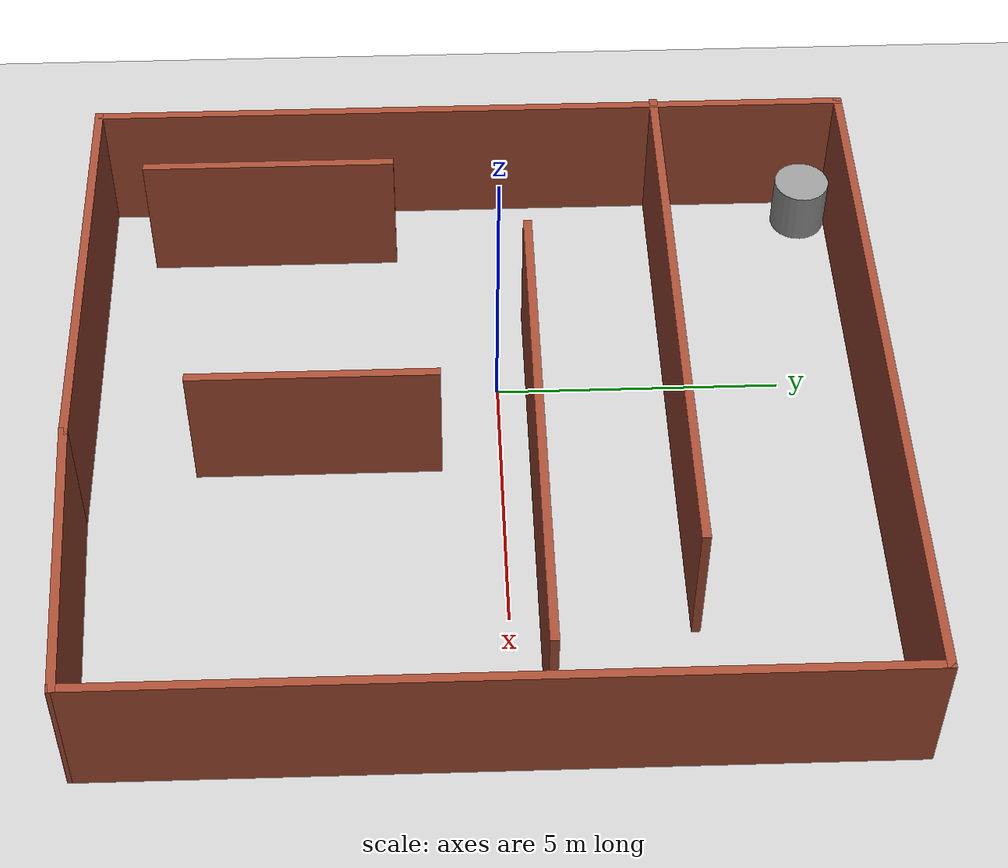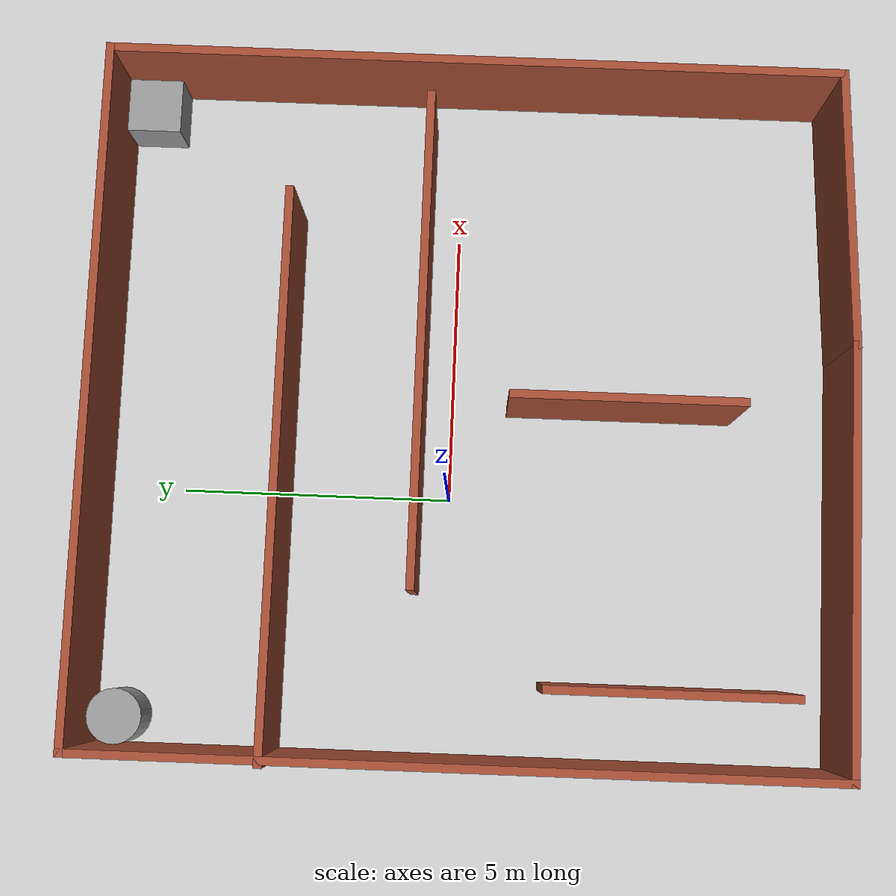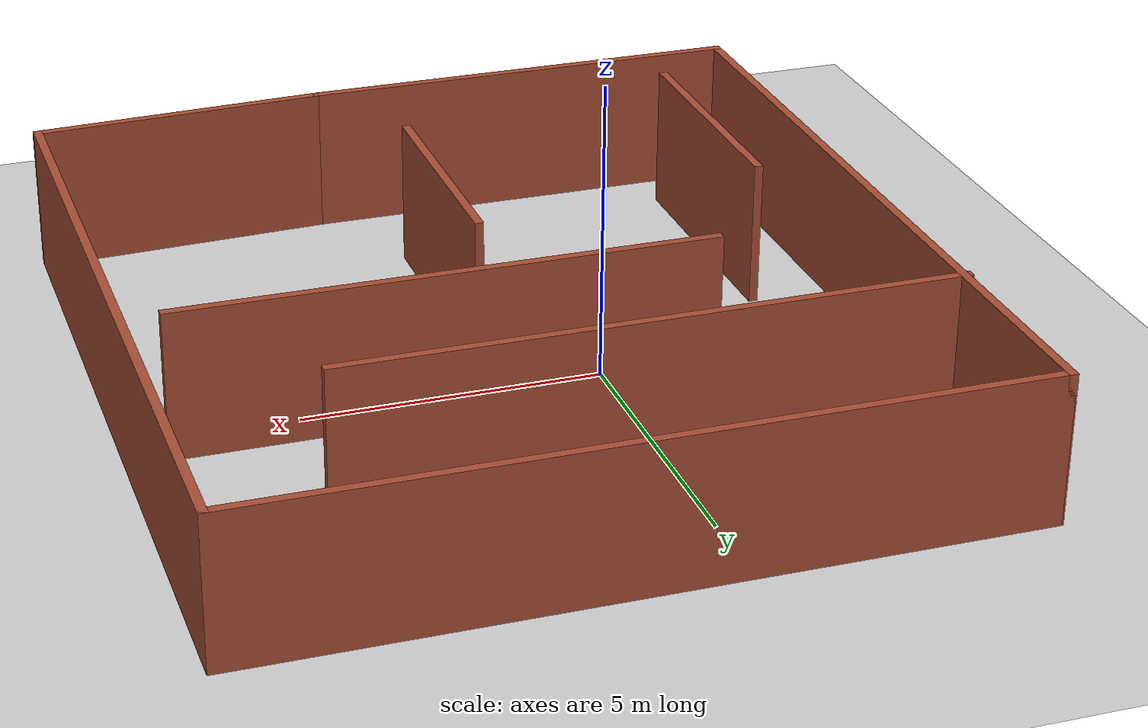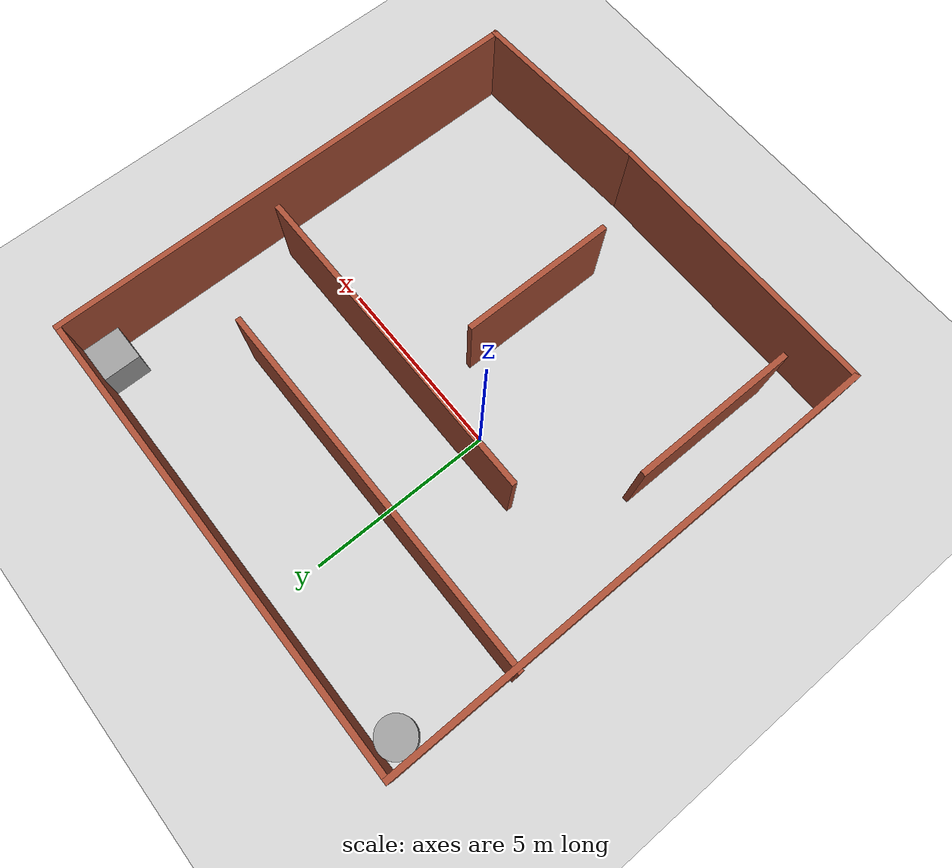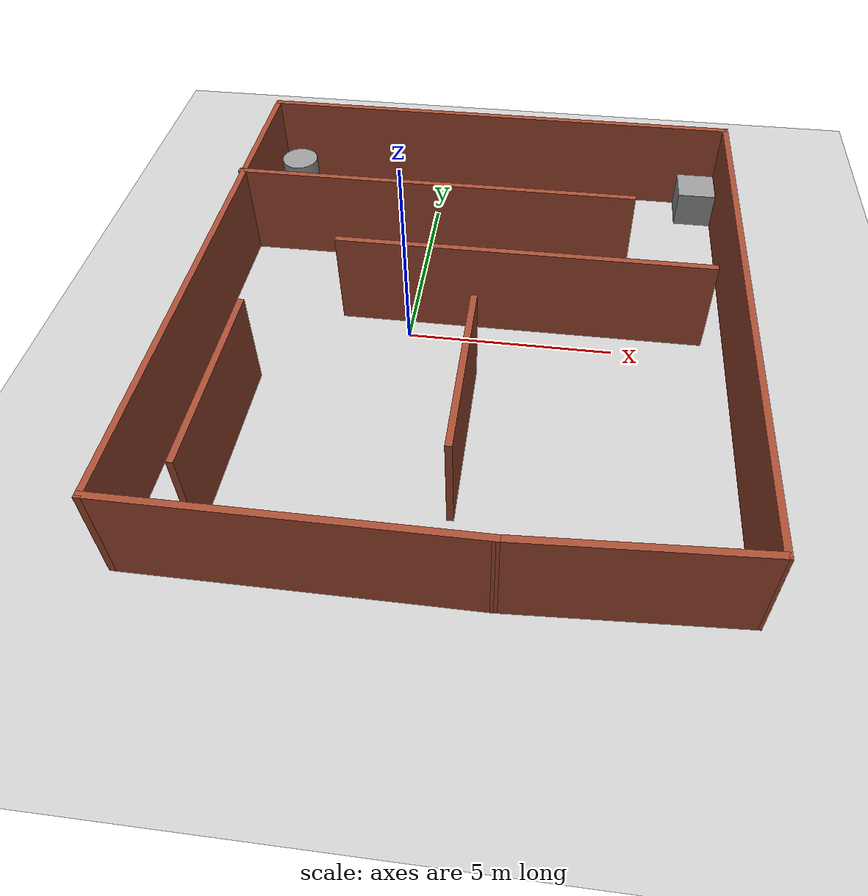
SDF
<sdf version="1.7">
 <world name="default">
  <light name="sun" type="directional">
   <pose>0 0 10 0 -0 0</pose>
   <diffuse>0.8 0.8 0.8 1</diffuse>
   <specular>0.2 0.2 0.2 1</specular>
   <attenuation>
    <range>1000</range>
    <constant>0.9</constant>
    <linear>0.01</linear>
    <quadratic>0.001</quadratic>
   </attenuation>
   <direction>-0.5 0.1 -0.9</direction>
   <spot><inner_angle>0</inner_angle><outer_angle>0</outer_angle><falloff>0</falloff></spot>
  </light>
  <model name="ground_plane">
   <static>1</static>
   <link name="link">
    <collision name="collision">
     <geometry><plane><normal>0 0 1</normal><size>100 100</size></plane></geometry>
     <surface><friction><ode><mu>100</mu><mu2>50</mu2></ode></friction></surface>
    </collision>
    <visual name="visual">
     <cast_shadows>0</cast_shadows>
     <geometry><plane><normal>0 0 1</normal><size>100 100</size></plane></geometry>
     <material>
      <script><uri>file://media/materials/scripts/gazebo.material</uri><name>Gazebo/Grey</name></script>
     </material>
    </visual>
   </link>
  </model>
  <gravity>0 0 -9.8</gravity>
  <magnetic_field>6e-06 2.3e-05 -4.2e-05</magnetic_field>
  <atmosphere type="adiabatic"/>
  <physics type="ode">
   <max_step_size>0.001</max_step_size>
   <real_time_factor>1</real_time_factor>
   <real_time_update_rate>1000</real_time_update_rate>
  </physics>
  <scene><ambient>0.4 0.4 0.4 1</ambient><background>0.7 0.7 0.7 1</background><shadows>1</shadows></scene>
  <spherical_coordinates>
   <surface_model>EARTH_WGS84</surface_model>
   <latitude_deg>0</latitude_deg>
   <longitude_deg>0</longitude_deg>
   <elevation>0</elevation>
   <heading_deg>0</heading_deg>
  </spherical_coordinates>
  <model name="maze_map.world">
   <pose>1.49856 -0.353787 0 0 -0 0</pose>
   <link name="Wall_0">
    <collision name="Wall_0_Collision">
     <geometry><box><size>7.75 0.15 2.5</size></box></geometry>
     <pose>0 0 1.25 0 -0 0</pose>
    </collision>
    <visual name="Wall_0_Visual">
     <pose>0 0 1.25 0 -0 0</pose>
     <geometry><box><size>7.75 0.15 2.5</size></box></geometry>
     <material>
      <script><uri>file://media/materials/scripts/gazebo.material</uri><name>Gazebo/Bricks</name></script>
      <ambient>1 1 1 1</ambient>
     </material>
     <meta><layer>0</layer></meta>
    </visual>
    <pose>-2.47349 -6.79817 0 0 -0 3.14159</pose>
   </link>
   <link name="Wall_11">
    <collision name="Wall_11_Collision">
     <geometry><box><size>4.25 0.15 2.5</size></box></geometry>
     <pose>0 0 1.25 0 -0 0</pose>
    </collision>
    <visual name="Wall_11_Visual">
     <pose>0 0 1.25 0 -0 0</pose>
     <geometry><box><size>4.25 0.15 2.5</size></box></geometry>
     <material>
      <script><uri>file://media/materials/scripts/gazebo.material</uri><name>Gazebo/Bricks</name></script>
      <ambient>1 1 1 1</ambient>
     </material>
     <meta><layer>0</layer></meta>
    </visual>
    <pose>0.229714 -2.79319 0 0 -0 -1.5708</pose>
   </link>
   <link name="Wall_13">
    <collision name="Wall_13_Collision">
     <geometry><box><size>4.5 0.15 2.5</size></box></geometry>
     <pose>0 0 1.25 0 -0 0</pose>
    </collision>
    <visual name="Wall_13_Visual">
     <pose>0 0 1.25 0 -0 0</pose>
     <geometry><box><size>4.5 0.15 2.5</size></box></geometry>
     <material>
      <script><uri>file://media/materials/scripts/gazebo.material</uri><name>Gazebo/Bricks</name></script>
      <ambient>1 1 1 1</ambient>
     </material>
     <meta><layer>0</layer></meta>
    </visual>
    <pose>-4.88792 -3.66257 0 0 -0 -1.5708</pose>
   </link>
   <link name="Wall_2">
    <collision name="Wall_2_Collision">
     <geometry><box><size>13.75 0.15 2.5</size></box></geometry>
     <pose>0 0 1.25 0 -0 0</pose>
    </collision>
    <visual name="Wall_2_Visual">
     <pose>0 0 1.25 0 -0 0</pose>
     <geometry><box><size>13.75 0.15 2.5</size></box></geometry>
     <material>
      <script><uri>file://media/materials/scripts/gazebo.material</uri><name>Gazebo/Bricks</name></script>
      <ambient>1 1 1 1</ambient>
     </material>
     <meta><layer>0</layer></meta>
    </visual>
    <pose>-6.27349 0.001826 0 0 -0 1.5708</pose>
   </link>
   <link name="Wall_3">
    <collision name="Wall_3_Collision">
     <geometry><box><size>12.75 0.15 2.5</size></box></geometry>
     <pose>0 0 1.25 0 -0 0</pose>
    </collision>
    <visual name="Wall_3_Visual">
     <pose>0 0 1.25 0 -0 0</pose>
     <geometry><box><size>12.75 0.15 2.5</size></box></geometry>
     <material>
      <script><uri>file://media/materials/scripts/gazebo.material</uri><name>Gazebo/Bricks</name></script>
      <ambient>1 1 1 1</ambient>
     </material>
     <meta><layer>0</layer></meta>
    </visual>
    <pose>0.026506 6.80183 0 0 -0 0</pose>
   </link>
   <link name="Wall_4">
    <collision name="Wall_4_Collision">
     <geometry><box><size>13.5 0.15 2.5</size></box></geometry>
     <pose>0 0 1.25 0 -0 0</pose>
    </collision>
    <visual name="Wall_4_Visual">
     <pose>0 0 1.25 0 -0 0</pose>
     <geometry><box><size>13.5 0.15 2.5</size></box></geometry>
     <material>
      <script><uri>file://media/materials/scripts/gazebo.material</uri><name>Gazebo/Bricks</name></script>
      <ambient>1 1 1 1</ambient>
     </material>
     <meta><layer>0</layer></meta>
    </visual>
    <pose>6.32651 0.126826 0 0 -0 -1.5708</pose>
   </link>
   <link name="Wall_5">
    <collision name="Wall_5_Collision">
     <geometry><box><size>5.15625 0.15 2.5</size></box></geometry>
     <pose>0 0 1.25 0 -0 0</pose>
    </collision>
    <visual name="Wall_5_Visual">
     <pose>0 0 1.25 0 -0 0</pose>
     <geometry><box><size>5.15625 0.15 2.5</size></box></geometry>
     <material>
      <script><uri>file://media/materials/scripts/gazebo.material</uri><name>Gazebo/Bricks</name></script>
      <ambient>1 1 1 1</ambient>
     </material>
     <meta><layer>0</layer></meta>
    </visual>
    <pose>3.82651 -6.67317 0 0 -0 -3.09163</pose>
   </link>
   <link name="Wall_7">
    <collision name="Wall_7_Collision">
     <geometry><box><size>10.25 0.15 2.5</size></box></geometry>
     <pose>0 0 1.25 0 -0 0</pose>
    </collision>
    <visual name="Wall_7_Visual">
     <pose>0 0 1.25 0 -0 0</pose>
     <geometry><box><size>10.25 0.15 2.5</size></box></geometry>
     <material>
      <script><uri>file://media/materials/scripts/gazebo.material</uri><name>Gazebo/Bricks</name></script>
      <ambient>1 1 1 1</ambient>
     </material>
     <meta><layer>0</layer></meta>
    </visual>
    <pose>-1.28016 3.39744 0 0 -0 0</pose>
   </link>
   <link name="Wall_9">
    <collision name="Wall_9_Collision">
     <geometry><box><size>9 0.15 2.5</size></box></geometry>
     <pose>0 0 1.25 0 -0 0</pose>
    </collision>
    <visual name="Wall_9_Visual">
     <pose>0 0 1.25 0 -0 0</pose>
     <geometry><box><size>9 0.15 2.5</size></box></geometry>
     <material>
      <script><uri>file://media/materials/scripts/gazebo.material</uri><name>Gazebo/Bricks</name></script>
      <ambient>1 1 1 1</ambient>
     </material>
     <meta><layer>0</layer></meta>
    </visual>
    <pose>1.21194 0.931674 0 0 -0 0</pose>
   </link>
   <static>1</static>
  </model>
  <model name="unit_box">
   <pose>7.25009 5.87304 0.499995 1e-05 -0 -5e-06</pose>
   <link name="link">
    <inertial>
     <mass>1</mass>
     <inertia>
      <ixx>0.166667</ixx>
      <ixy>0</ixy>
      <ixz>0</ixz>
      <iyy>0.166667</iyy>
      <iyz>0</iyz>
      <izz>0.166667</izz>
     </inertia>
    </inertial>
    <collision name="collision"><geometry><box><size>1 1 1</size></box></geometry></collision>
    <visual name="visual">
     <geometry><box><size>1 1 1</size></box></geometry>
     <material>
      <script><name>Gazebo/Grey</name><uri>file://media/materials/scripts/gazebo.material</uri></script>
     </material>
    </visual>
   </link>
  </model>
  <model name="unit_cylinder">
   <pose>-4.19886 5.87235 0.501296 0.001452 0.002152 0.027843</pose>
   <link name="link">
    <inertial>
     <mass>1</mass>
     <inertia><ixx>0.145833</ixx><ixy>0</ixy><ixz>0</ixz><iyy>0.145833</iyy><iyz>0</iyz><izz>0.125</izz></inertia>
    </inertial>
    <collision name="collision">
     <geometry><cylinder><radius>0.5</radius><length>1</length></cylinder></geometry>
    </collision>
    <visual name="visual">
     <geometry><cylinder><radius>0.5</radius><length>1</length></cylinder></geometry>
     <material>
      <script><name>Gazebo/Grey</name><uri>file://media/materials/scripts/gazebo.material</uri></script>
     </material>
    </visual>
   </link>
  </model>
 </world>
</sdf>
